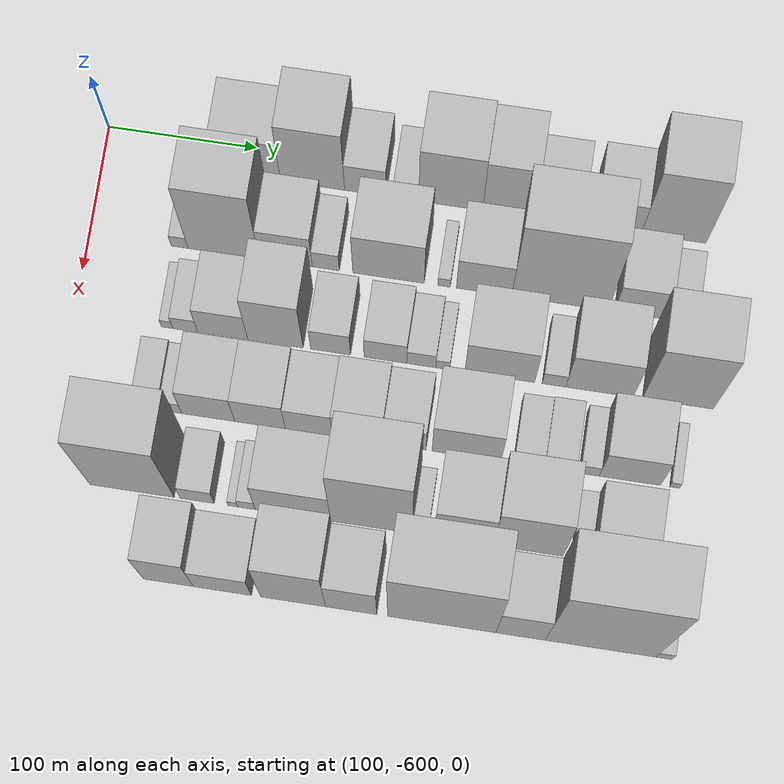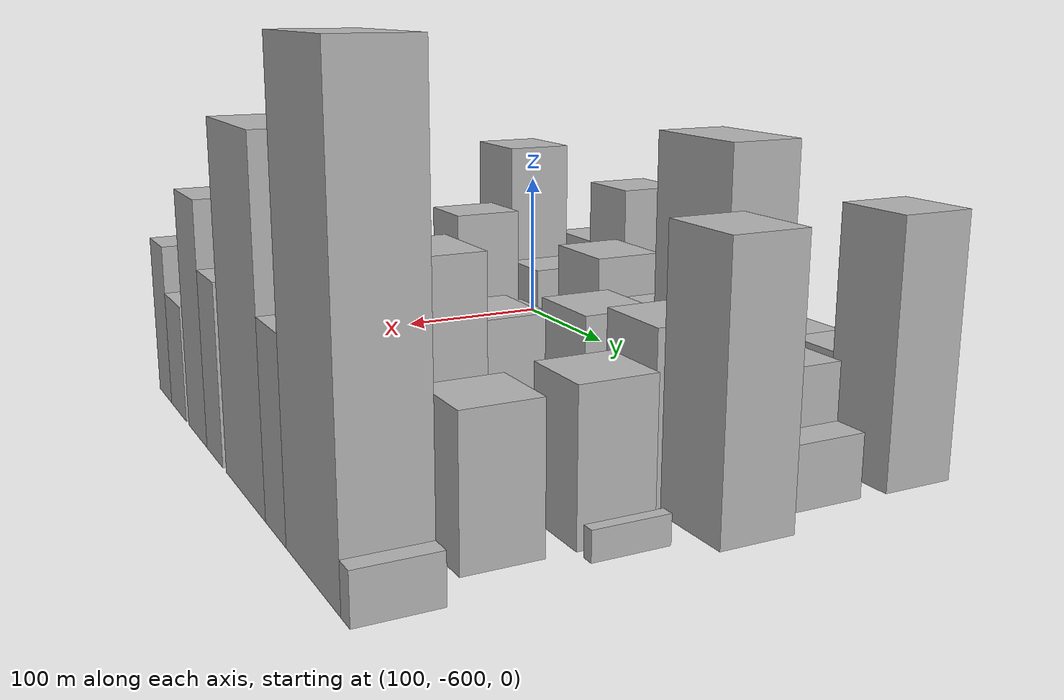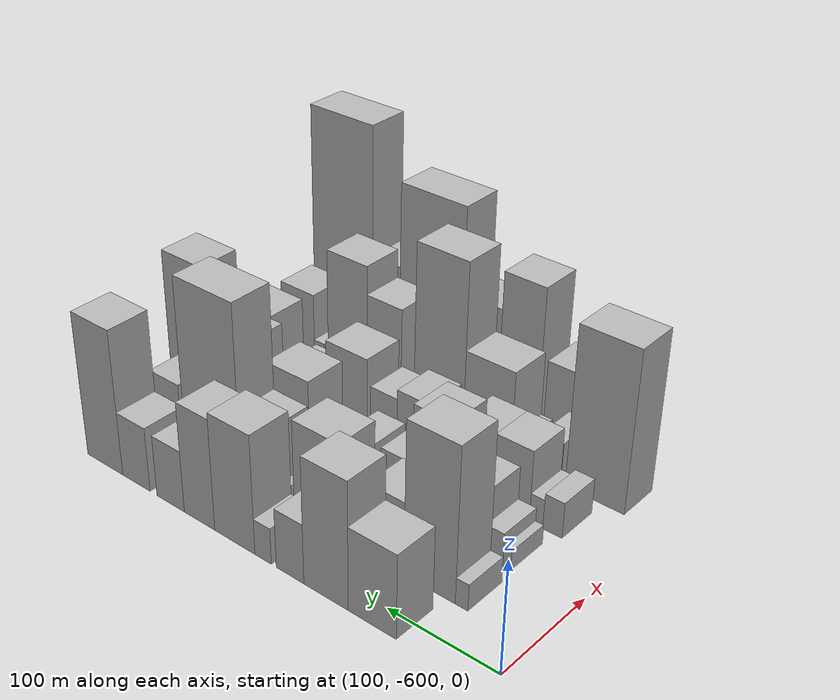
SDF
<sdf version="1.6">
 <world name="default">
  <model name="building_11">
   <static>1</static>
   <pose>100.0000 -503.0766 0 0.000000 0.000000 0.000000</pose>
   <link name="link">
    <pose>0 0 37.50 0 0 0</pose>
    <collision name="collision"><geometry><box><size>40.0000 44.2611 75.0000</size></box></geometry></collision>
    <visual name="visual">
     <cast_shadows>0</cast_shadows>
     <geometry><box><size>40.0000 44.2611 75.0000</size></box></geometry>
     <material>
      <script>
       <uri>model://HANNAS_wall/materials/scripts</uri>
       <uri>model://HANNAS_wall/materials/textures</uri>
       <name>vrc/HANNAS_wall</name>
      </script>
     </material>
    </visual>
   </link>
  </model>
  <model name="building_12">
   <static>1</static>
   <pose>100.0000 -459.4445 0 0.000000 0.000000 0.000000</pose>
   <link name="link">
    <pose>0 0 57.00 0 0 0</pose>
    <collision name="collision"><geometry><box><size>40.0000 43.0030 114.0000</size></box></geometry></collision>
    <visual name="visual">
     <cast_shadows>0</cast_shadows>
     <geometry><box><size>40.0000 43.0030 114.0000</size></box></geometry>
     <material>
      <script>
       <uri>model://HANNAS_wall/materials/scripts</uri>
       <uri>model://HANNAS_wall/materials/textures</uri>
       <name>vrc/HANNAS_wall</name>
      </script>
     </material>
    </visual>
   </link>
  </model>
  <model name="building_13">
   <static>1</static>
   <pose>100.0000 -424.0741 0 0.000000 0.000000 0.000000</pose>
   <link name="link">
    <pose>0 0 27.00 0 0 0</pose>
    <collision name="collision"><geometry><box><size>40.0000 27.7378 54.0000</size></box></geometry></collision>
    <visual name="visual">
     <cast_shadows>0</cast_shadows>
     <geometry><box><size>40.0000 27.7378 54.0000</size></box></geometry>
     <material>
      <script>
       <uri>model://HANNAS_wall/materials/scripts</uri>
       <uri>model://HANNAS_wall/materials/textures</uri>
       <name>vrc/HANNAS_wall</name>
      </script>
     </material>
    </visual>
   </link>
  </model>
  <model name="building_14">
   <static>1</static>
   <pose>100.0000 -396.7473 0 0.000000 0.000000 0.000000</pose>
   <link name="link">
    <pose>0 0 16.50 0 0 0</pose>
    <collision name="collision"><geometry><box><size>40.0000 16.9158 33.0000</size></box></geometry></collision>
    <visual name="visual">
     <cast_shadows>0</cast_shadows>
     <geometry><box><size>40.0000 16.9158 33.0000</size></box></geometry>
     <material>
      <script>
       <uri>model://HANNAS_wall/materials/scripts</uri>
       <uri>model://HANNAS_wall/materials/textures</uri>
       <name>vrc/HANNAS_wall</name>
      </script>
     </material>
    </visual>
   </link>
  </model>
  <model name="building_15">
   <static>1</static>
   <pose>100.0000 -366.8694 0 0.000000 0.000000 0.000000</pose>
   <link name="link">
    <pose>0 0 54.00 0 0 0</pose>
    <collision name="collision"><geometry><box><size>40.0000 42.8400 108.0000</size></box></geometry></collision>
    <visual name="visual">
     <cast_shadows>0</cast_shadows>
     <geometry><box><size>40.0000 42.8400 108.0000</size></box></geometry>
     <material>
      <script>
       <uri>model://HANNAS_wall/materials/scripts</uri>
       <uri>model://HANNAS_wall/materials/textures</uri>
       <name>vrc/HANNAS_wall</name>
      </script>
     </material>
    </visual>
   </link>
  </model>
  <model name="building_16">
   <static>1</static>
   <pose>100.0000 -328.5726 0 0.000000 0.000000 0.000000</pose>
   <link name="link">
    <pose>0 0 51.00 0 0 0</pose>
    <collision name="collision"><geometry><box><size>40.0000 33.7535 102.0000</size></box></geometry></collision>
    <visual name="visual">
     <cast_shadows>0</cast_shadows>
     <geometry><box><size>40.0000 33.7535 102.0000</size></box></geometry>
     <material>
      <script>
       <uri>model://HANNAS_wall/materials/scripts</uri>
       <uri>model://HANNAS_wall/materials/textures</uri>
       <name>vrc/HANNAS_wall</name>
      </script>
     </material>
    </visual>
   </link>
  </model>
  <model name="building_17">
   <static>1</static>
   <pose>100.0000 -295.9605 0 0.000000 0.000000 0.000000</pose>
   <link name="link">
    <pose>0 0 28.50 0 0 0</pose>
    <collision name="collision"><geometry><box><size>40.0000 31.4708 57.0000</size></box></geometry></collision>
    <visual name="visual">
     <cast_shadows>0</cast_shadows>
     <geometry><box><size>40.0000 31.4708 57.0000</size></box></geometry>
     <material>
      <script>
       <uri>model://HANNAS_wall/materials/scripts</uri>
       <uri>model://HANNAS_wall/materials/textures</uri>
       <name>vrc/HANNAS_wall</name>
      </script>
     </material>
    </visual>
   </link>
  </model>
  <model name="building_18">
   <static>1</static>
   <pose>100.0000 -255.9308 0 0.000000 0.000000 0.000000</pose>
   <link name="link">
    <pose>0 0 30.00 0 0 0</pose>
    <collision name="collision"><geometry><box><size>40.0000 32.5886 60.0000</size></box></geometry></collision>
    <visual name="visual">
     <cast_shadows>0</cast_shadows>
     <geometry><box><size>40.0000 32.5886 60.0000</size></box></geometry>
     <material>
      <script>
       <uri>model://HANNAS_wall/materials/scripts</uri>
       <uri>model://HANNAS_wall/materials/textures</uri>
       <name>vrc/HANNAS_wall</name>
      </script>
     </material>
    </visual>
   </link>
  </model>
  <model name="building_19">
   <static>1</static>
   <pose>100.0000 -218.0816 0 0.000000 0.000000 0.000000</pose>
   <link name="link">
    <pose>0 0 67.50 0 0 0</pose>
    <collision name="collision"><geometry><box><size>40.0000 43.1098 135.0000</size></box></geometry></collision>
    <visual name="visual">
     <cast_shadows>0</cast_shadows>
     <geometry><box><size>40.0000 43.1098 135.0000</size></box></geometry>
     <material>
      <script>
       <uri>model://HANNAS_wall/materials/scripts</uri>
       <uri>model://HANNAS_wall/materials/textures</uri>
       <name>vrc/HANNAS_wall</name>
      </script>
     </material>
    </visual>
   </link>
  </model>
  <model name="building_62">
   <static>1</static>
   <pose>155.0000 -539.3134 0 0.000000 0.000000 0.000000</pose>
   <link name="link">
    <pose>0 0 12.00 0 0 0</pose>
    <collision name="collision"><geometry><box><size>40.0000 11.3011 24.0000</size></box></geometry></collision>
    <visual name="visual">
     <cast_shadows>0</cast_shadows>
     <geometry><box><size>40.0000 11.3011 24.0000</size></box></geometry>
     <material>
      <script>
       <uri>model://HANNAS_wall/materials/scripts</uri>
       <uri>model://HANNAS_wall/materials/textures</uri>
       <name>vrc/HANNAS_wall</name>
      </script>
     </material>
    </visual>
   </link>
  </model>
  <model name="building_63">
   <static>1</static>
   <pose>155.0000 -509.8945 0 0.000000 0.000000 0.000000</pose>
   <link name="link">
    <pose>0 0 69.00 0 0 0</pose>
    <collision name="collision"><geometry><box><size>40.0000 47.5366 138.0000</size></box></geometry></collision>
    <visual name="visual">
     <cast_shadows>0</cast_shadows>
     <geometry><box><size>40.0000 47.5366 138.0000</size></box></geometry>
     <material>
      <script>
       <uri>model://HANNAS_wall/materials/scripts</uri>
       <uri>model://HANNAS_wall/materials/textures</uri>
       <name>vrc/HANNAS_wall</name>
      </script>
     </material>
    </visual>
   </link>
  </model>
  <model name="building_64">
   <static>1</static>
   <pose>155.0000 -468.4317 0 0.000000 0.000000 0.000000</pose>
   <link name="link">
    <pose>0 0 33.00 0 0 0</pose>
    <collision name="collision"><geometry><box><size>40.0000 35.3890 66.0000</size></box></geometry></collision>
    <visual name="visual">
     <cast_shadows>0</cast_shadows>
     <geometry><box><size>40.0000 35.3890 66.0000</size></box></geometry>
     <material>
      <script>
       <uri>model://HANNAS_wall/materials/scripts</uri>
       <uri>model://HANNAS_wall/materials/textures</uri>
       <name>vrc/HANNAS_wall</name>
      </script>
     </material>
    </visual>
   </link>
  </model>
  <model name="building_65">
   <static>1</static>
   <pose>155.0000 -441.7336 0 0.000000 0.000000 0.000000</pose>
   <link name="link">
    <pose>0 0 18.00 0 0 0</pose>
    <collision name="collision"><geometry><box><size>40.0000 18.0073 36.0000</size></box></geometry></collision>
    <visual name="visual">
     <cast_shadows>0</cast_shadows>
     <geometry><box><size>40.0000 18.0073 36.0000</size></box></geometry>
     <material>
      <script>
       <uri>model://HANNAS_wall/materials/scripts</uri>
       <uri>model://HANNAS_wall/materials/textures</uri>
       <name>vrc/HANNAS_wall</name>
      </script>
     </material>
    </visual>
   </link>
  </model>
  <model name="building_66">
   <static>1</static>
   <pose>155.0000 -400.0193 0 0.000000 0.000000 0.000000</pose>
   <link name="link">
    <pose>0 0 43.50 0 0 0</pose>
    <collision name="collision"><geometry><box><size>40.0000 47.4213 87.0000</size></box></geometry></collision>
    <visual name="visual">
     <cast_shadows>0</cast_shadows>
     <geometry><box><size>40.0000 47.4213 87.0000</size></box></geometry>
     <material>
      <script>
       <uri>model://HANNAS_wall/materials/scripts</uri>
       <uri>model://HANNAS_wall/materials/textures</uri>
       <name>vrc/HANNAS_wall</name>
      </script>
     </material>
    </visual>
   </link>
  </model>
  <model name="building_67">
   <static>1</static>
   <pose>155.0000 -363.1288 0 0.000000 0.000000 0.000000</pose>
   <link name="link">
    <pose>0 0 9.00 0 0 0</pose>
    <collision name="collision"><geometry><box><size>40.0000 8.3597 18.0000</size></box></geometry></collision>
    <visual name="visual">
     <cast_shadows>0</cast_shadows>
     <geometry><box><size>40.0000 8.3597 18.0000</size></box></geometry>
     <material>
      <script>
       <uri>model://HANNAS_wall/materials/scripts</uri>
       <uri>model://HANNAS_wall/materials/textures</uri>
       <name>vrc/HANNAS_wall</name>
      </script>
     </material>
    </visual>
   </link>
  </model>
  <model name="building_68">
   <static>1</static>
   <pose>155.0000 -336.6255 0 0.000000 0.000000 0.000000</pose>
   <link name="link">
    <pose>0 0 34.50 0 0 0</pose>
    <collision name="collision"><geometry><box><size>40.0000 36.6469 69.0000</size></box></geometry></collision>
    <visual name="visual">
     <cast_shadows>0</cast_shadows>
     <geometry><box><size>40.0000 36.6469 69.0000</size></box></geometry>
     <material>
      <script>
       <uri>model://HANNAS_wall/materials/scripts</uri>
       <uri>model://HANNAS_wall/materials/textures</uri>
       <name>vrc/HANNAS_wall</name>
      </script>
     </material>
    </visual>
   </link>
  </model>
  <model name="building_69">
   <static>1</static>
   <pose>155.0000 -286.3403 0 0.000000 0.000000 0.000000</pose>
   <link name="link">
    <pose>0 0 82.50 0 0 0</pose>
    <collision name="collision"><geometry><box><size>40.0000 63.9236 165.0000</size></box></geometry></collision>
    <visual name="visual">
     <cast_shadows>0</cast_shadows>
     <geometry><box><size>40.0000 63.9236 165.0000</size></box></geometry>
     <material>
      <script>
       <uri>model://HANNAS_wall/materials/scripts</uri>
       <uri>model://HANNAS_wall/materials/textures</uri>
       <name>vrc/HANNAS_wall</name>
      </script>
     </material>
    </visual>
   </link>
  </model>
  <model name="building_70">
   <static>1</static>
   <pose>155.0000 -233.5866 0 0.000000 0.000000 0.000000</pose>
   <link name="link">
    <pose>0 0 31.50 0 0 0</pose>
    <collision name="collision"><geometry><box><size>40.0000 33.5837 63.0000</size></box></geometry></collision>
    <visual name="visual">
     <cast_shadows>0</cast_shadows>
     <geometry><box><size>40.0000 33.5837 63.0000</size></box></geometry>
     <material>
      <script>
       <uri>model://HANNAS_wall/materials/scripts</uri>
       <uri>model://HANNAS_wall/materials/textures</uri>
       <name>vrc/HANNAS_wall</name>
      </script>
     </material>
    </visual>
   </link>
  </model>
  <model name="building_71">
   <static>1</static>
   <pose>155.0000 -207.1999 0 0.000000 0.000000 0.000000</pose>
   <link name="link">
    <pose>0 0 16.50 0 0 0</pose>
    <collision name="collision"><geometry><box><size>40.0000 19.1897 33.0000</size></box></geometry></collision>
    <visual name="visual">
     <cast_shadows>0</cast_shadows>
     <geometry><box><size>40.0000 19.1897 33.0000</size></box></geometry>
     <material>
      <script>
       <uri>model://HANNAS_wall/materials/scripts</uri>
       <uri>model://HANNAS_wall/materials/textures</uri>
       <name>vrc/HANNAS_wall</name>
      </script>
     </material>
    </visual>
   </link>
  </model>
  <model name="building_112">
   <static>1</static>
   <pose>210.0000 -538.1920 0 0.000000 0.000000 0.000000</pose>
   <link name="link">
    <pose>0 0 9.00 0 0 0</pose>
    <collision name="collision"><geometry><box><size>40.0000 7.4418 18.0000</size></box></geometry></collision>
    <visual name="visual">
     <cast_shadows>0</cast_shadows>
     <geometry><box><size>40.0000 7.4418 18.0000</size></box></geometry>
     <material>
      <script>
       <uri>model://HANNAS_wall/materials/scripts</uri>
       <uri>model://HANNAS_wall/materials/textures</uri>
       <name>vrc/HANNAS_wall</name>
      </script>
     </material>
    </visual>
   </link>
  </model>
  <model name="building_113">
   <static>1</static>
   <pose>210.0000 -526.1762 0 0.000000 0.000000 0.000000</pose>
   <link name="link">
    <pose>0 0 15.00 0 0 0</pose>
    <collision name="collision"><geometry><box><size>40.0000 16.5898 30.0000</size></box></geometry></collision>
    <visual name="visual">
     <cast_shadows>0</cast_shadows>
     <geometry><box><size>40.0000 16.5898 30.0000</size></box></geometry>
     <material>
      <script>
       <uri>model://HANNAS_wall/materials/scripts</uri>
       <uri>model://HANNAS_wall/materials/textures</uri>
       <name>vrc/HANNAS_wall</name>
      </script>
     </material>
    </visual>
   </link>
  </model>
  <model name="building_114">
   <static>1</static>
   <pose>210.0000 -501.2615 0 0.000000 0.000000 0.000000</pose>
   <link name="link">
    <pose>0 0 30.00 0 0 0</pose>
    <collision name="collision"><geometry><box><size>40.0000 33.2396 60.0000</size></box></geometry></collision>
    <visual name="visual">
     <cast_shadows>0</cast_shadows>
     <geometry><box><size>40.0000 33.2396 60.0000</size></box></geometry>
     <material>
      <script>
       <uri>model://HANNAS_wall/materials/scripts</uri>
       <uri>model://HANNAS_wall/materials/textures</uri>
       <name>vrc/HANNAS_wall</name>
      </script>
     </material>
    </visual>
   </link>
  </model>
  <model name="building_115">
   <static>1</static>
   <pose>210.0000 -466.2937 0 0.000000 0.000000 0.000000</pose>
   <link name="link">
    <pose>0 0 52.50 0 0 0</pose>
    <collision name="collision"><geometry><box><size>40.0000 36.6959 105.0000</size></box></geometry></collision>
    <visual name="visual">
     <cast_shadows>0</cast_shadows>
     <geometry><box><size>40.0000 36.6959 105.0000</size></box></geometry>
     <material>
      <script>
       <uri>model://HANNAS_wall/materials/scripts</uri>
       <uri>model://HANNAS_wall/materials/textures</uri>
       <name>vrc/HANNAS_wall</name>
      </script>
     </material>
    </visual>
   </link>
  </model>
  <model name="building_116">
   <static>1</static>
   <pose>210.0000 -429.7981 0 0.000000 0.000000 0.000000</pose>
   <link name="link">
    <pose>0 0 25.50 0 0 0</pose>
    <collision name="collision"><geometry><box><size>40.0000 26.2952 51.0000</size></box></geometry></collision>
    <visual name="visual">
     <cast_shadows>0</cast_shadows>
     <geometry><box><size>40.0000 26.2952 51.0000</size></box></geometry>
     <material>
      <script>
       <uri>model://HANNAS_wall/materials/scripts</uri>
       <uri>model://HANNAS_wall/materials/textures</uri>
       <name>vrc/HANNAS_wall</name>
      </script>
     </material>
    </visual>
   </link>
  </model>
  <model name="building_117">
   <static>1</static>
   <pose>210.0000 -393.5636 0 0.000000 0.000000 0.000000</pose>
   <link name="link">
    <pose>0 0 24.00 0 0 0</pose>
    <collision name="collision"><geometry><box><size>40.0000 28.1739 48.0000</size></box></geometry></collision>
    <visual name="visual">
     <cast_shadows>0</cast_shadows>
     <geometry><box><size>40.0000 28.1739 48.0000</size></box></geometry>
     <material>
      <script>
       <uri>model://HANNAS_wall/materials/scripts</uri>
       <uri>model://HANNAS_wall/materials/textures</uri>
       <name>vrc/HANNAS_wall</name>
      </script>
     </material>
    </visual>
   </link>
  </model>
  <model name="building_118">
   <static>1</static>
   <pose>210.0000 -369.9596 0 0.000000 0.000000 0.000000</pose>
   <link name="link">
    <pose>0 0 16.50 0 0 0</pose>
    <collision name="collision"><geometry><box><size>40.0000 19.0341 33.0000</size></box></geometry></collision>
    <visual name="visual">
     <cast_shadows>0</cast_shadows>
     <geometry><box><size>40.0000 19.0341 33.0000</size></box></geometry>
     <material>
      <script>
       <uri>model://HANNAS_wall/materials/scripts</uri>
       <uri>model://HANNAS_wall/materials/textures</uri>
       <name>vrc/HANNAS_wall</name>
      </script>
     </material>
    </visual>
   </link>
  </model>
  <model name="building_119">
   <static>1</static>
   <pose>210.0000 -355.8477 0 0.000000 0.000000 0.000000</pose>
   <link name="link">
    <pose>0 0 10.50 0 0 0</pose>
    <collision name="collision"><geometry><box><size>40.0000 9.1898 21.0000</size></box></geometry></collision>
    <visual name="visual">
     <cast_shadows>0</cast_shadows>
     <geometry><box><size>40.0000 9.1898 21.0000</size></box></geometry>
     <material>
      <script>
       <uri>model://HANNAS_wall/materials/scripts</uri>
       <uri>model://HANNAS_wall/materials/textures</uri>
       <name>vrc/HANNAS_wall</name>
      </script>
     </material>
    </visual>
   </link>
  </model>
  <model name="building_120">
   <static>1</static>
   <pose>210.0000 -318.3385 0 0.000000 0.000000 0.000000</pose>
   <link name="link">
    <pose>0 0 39.00 0 0 0</pose>
    <collision name="collision"><geometry><box><size>40.0000 45.8285 78.0000</size></box></geometry></collision>
    <visual name="visual">
     <cast_shadows>0</cast_shadows>
     <geometry><box><size>40.0000 45.8285 78.0000</size></box></geometry>
     <material>
      <script>
       <uri>model://HANNAS_wall/materials/scripts</uri>
       <uri>model://HANNAS_wall/materials/textures</uri>
       <name>vrc/HANNAS_wall</name>
      </script>
     </material>
    </visual>
   </link>
  </model>
  <model name="building_121">
   <static>1</static>
   <pose>210.0000 -282.6777 0 0.000000 0.000000 0.000000</pose>
   <link name="link">
    <pose>0 0 15.00 0 0 0</pose>
    <collision name="collision"><geometry><box><size>40.0000 15.4931 30.0000</size></box></geometry></collision>
    <visual name="visual">
     <cast_shadows>0</cast_shadows>
     <geometry><box><size>40.0000 15.4931 30.0000</size></box></geometry>
     <material>
      <script>
       <uri>model://HANNAS_wall/materials/scripts</uri>
       <uri>model://HANNAS_wall/materials/textures</uri>
       <name>vrc/HANNAS_wall</name>
      </script>
     </material>
    </visual>
   </link>
  </model>
  <model name="building_122">
   <static>1</static>
   <pose>210.0000 -252.7951 0 0.000000 0.000000 0.000000</pose>
   <link name="link">
    <pose>0 0 43.50 0 0 0</pose>
    <collision name="collision"><geometry><box><size>40.0000 44.2721 87.0000</size></box></geometry></collision>
    <visual name="visual">
     <cast_shadows>0</cast_shadows>
     <geometry><box><size>40.0000 44.2721 87.0000</size></box></geometry>
     <material>
      <script>
       <uri>model://HANNAS_wall/materials/scripts</uri>
       <uri>model://HANNAS_wall/materials/textures</uri>
       <name>vrc/HANNAS_wall</name>
      </script>
     </material>
    </visual>
   </link>
  </model>
  <model name="building_123">
   <static>1</static>
   <pose>210.0000 -201.3968 0 0.000000 0.000000 0.000000</pose>
   <link name="link">
    <pose>0 0 69.00 0 0 0</pose>
    <collision name="collision"><geometry><box><size>40.0000 46.5245 138.0000</size></box></geometry></collision>
    <visual name="visual">
     <cast_shadows>0</cast_shadows>
     <geometry><box><size>40.0000 46.5245 138.0000</size></box></geometry>
     <material>
      <script>
       <uri>model://HANNAS_wall/materials/scripts</uri>
       <uri>model://HANNAS_wall/materials/textures</uri>
       <name>vrc/HANNAS_wall</name>
      </script>
     </material>
    </visual>
   </link>
  </model>
  <model name="building_167">
   <static>1</static>
   <pose>265.0000 -540.4863 0 0.000000 0.000000 0.000000</pose>
   <link name="link">
    <pose>0 0 16.50 0 0 0</pose>
    <collision name="collision"><geometry><box><size>40.0000 17.7133 33.0000</size></box></geometry></collision>
    <visual name="visual">
     <cast_shadows>0</cast_shadows>
     <geometry><box><size>40.0000 17.7133 33.0000</size></box></geometry>
     <material>
      <script>
       <uri>model://HANNAS_wall/materials/scripts</uri>
       <uri>model://HANNAS_wall/materials/textures</uri>
       <name>vrc/HANNAS_wall</name>
      </script>
     </material>
    </visual>
   </link>
  </model>
  <model name="building_168">
   <static>1</static>
   <pose>265.0000 -525.3100 0 0.000000 0.000000 0.000000</pose>
   <link name="link">
    <pose>0 0 13.50 0 0 0</pose>
    <collision name="collision"><geometry><box><size>40.0000 12.6393 27.0000</size></box></geometry></collision>
    <visual name="visual">
     <cast_shadows>0</cast_shadows>
     <geometry><box><size>40.0000 12.6393 27.0000</size></box></geometry>
     <material>
      <script>
       <uri>model://HANNAS_wall/materials/scripts</uri>
       <uri>model://HANNAS_wall/materials/textures</uri>
       <name>vrc/HANNAS_wall</name>
      </script>
     </material>
    </visual>
   </link>
  </model>
  <model name="building_169">
   <static>1</static>
   <pose>265.0000 -501.5116 0 0.000000 0.000000 0.000000</pose>
   <link name="link">
    <pose>0 0 33.00 0 0 0</pose>
    <collision name="collision"><geometry><box><size>40.0000 34.9575 66.0000</size></box></geometry></collision>
    <visual name="visual">
     <cast_shadows>0</cast_shadows>
     <geometry><box><size>40.0000 34.9575 66.0000</size></box></geometry>
     <material>
      <script>
       <uri>model://HANNAS_wall/materials/scripts</uri>
       <uri>model://HANNAS_wall/materials/textures</uri>
       <name>vrc/HANNAS_wall</name>
      </script>
     </material>
    </visual>
   </link>
  </model>
  <model name="building_170">
   <static>1</static>
   <pose>265.0000 -467.3672 0 0.000000 0.000000 0.000000</pose>
   <link name="link">
    <pose>0 0 33.00 0 0 0</pose>
    <collision name="collision"><geometry><box><size>40.0000 33.3312 66.0000</size></box></geometry></collision>
    <visual name="visual">
     <cast_shadows>0</cast_shadows>
     <geometry><box><size>40.0000 33.3312 66.0000</size></box></geometry>
     <material>
      <script>
       <uri>model://HANNAS_wall/materials/scripts</uri>
       <uri>model://HANNAS_wall/materials/textures</uri>
       <name>vrc/HANNAS_wall</name>
      </script>
     </material>
    </visual>
   </link>
  </model>
  <model name="building_171">
   <static>1</static>
   <pose>265.0000 -435.3234 0 0.000000 0.000000 0.000000</pose>
   <link name="link">
    <pose>0 0 30.00 0 0 0</pose>
    <collision name="collision"><geometry><box><size>40.0000 30.7563 60.0000</size></box></geometry></collision>
    <visual name="visual">
     <cast_shadows>0</cast_shadows>
     <geometry><box><size>40.0000 30.7563 60.0000</size></box></geometry>
     <material>
      <script>
       <uri>model://HANNAS_wall/materials/scripts</uri>
       <uri>model://HANNAS_wall/materials/textures</uri>
       <name>vrc/HANNAS_wall</name>
      </script>
     </material>
    </visual>
   </link>
  </model>
  <model name="building_172">
   <static>1</static>
   <pose>265.0000 -403.3038 0 0.000000 0.000000 0.000000</pose>
   <link name="link">
    <pose>0 0 31.50 0 0 0</pose>
    <collision name="collision"><geometry><box><size>40.0000 33.2829 63.0000</size></box></geometry></collision>
    <visual name="visual">
     <cast_shadows>0</cast_shadows>
     <geometry><box><size>40.0000 33.2829 63.0000</size></box></geometry>
     <material>
      <script>
       <uri>model://HANNAS_wall/materials/scripts</uri>
       <uri>model://HANNAS_wall/materials/textures</uri>
       <name>vrc/HANNAS_wall</name>
      </script>
     </material>
    </visual>
   </link>
  </model>
  <model name="building_173">
   <static>1</static>
   <pose>265.0000 -372.6515 0 0.000000 0.000000 0.000000</pose>
   <link name="link">
    <pose>0 0 27.00 0 0 0</pose>
    <collision name="collision"><geometry><box><size>40.0000 28.0217 54.0000</size></box></geometry></collision>
    <visual name="visual">
     <cast_shadows>0</cast_shadows>
     <geometry><box><size>40.0000 28.0217 54.0000</size></box></geometry>
     <material>
      <script>
       <uri>model://HANNAS_wall/materials/scripts</uri>
       <uri>model://HANNAS_wall/materials/textures</uri>
       <name>vrc/HANNAS_wall</name>
      </script>
     </material>
    </visual>
   </link>
  </model>
  <model name="building_174">
   <static>1</static>
   <pose>265.0000 -332.1356 0 0.000000 0.000000 0.000000</pose>
   <link name="link">
    <pose>0 0 39.00 0 0 0</pose>
    <collision name="collision"><geometry><box><size>40.0000 45.0102 78.0000</size></box></geometry></collision>
    <visual name="visual">
     <cast_shadows>0</cast_shadows>
     <geometry><box><size>40.0000 45.0102 78.0000</size></box></geometry>
     <material>
      <script>
       <uri>model://HANNAS_wall/materials/scripts</uri>
       <uri>model://HANNAS_wall/materials/textures</uri>
       <name>vrc/HANNAS_wall</name>
      </script>
     </material>
    </visual>
   </link>
  </model>
  <model name="building_175">
   <static>1</static>
   <pose>265.0000 -291.8471 0 0.000000 0.000000 0.000000</pose>
   <link name="link">
    <pose>0 0 16.50 0 0 0</pose>
    <collision name="collision"><geometry><box><size>40.0000 19.5667 33.0000</size></box></geometry></collision>
    <visual name="visual">
     <cast_shadows>0</cast_shadows>
     <geometry><box><size>40.0000 19.5667 33.0000</size></box></geometry>
     <material>
      <script>
       <uri>model://HANNAS_wall/materials/scripts</uri>
       <uri>model://HANNAS_wall/materials/textures</uri>
       <name>vrc/HANNAS_wall</name>
      </script>
     </material>
    </visual>
   </link>
  </model>
  <model name="building_176">
   <static>1</static>
   <pose>265.0000 -271.9509 0 0.000000 0.000000 0.000000</pose>
   <link name="link">
    <pose>0 0 18.00 0 0 0</pose>
    <collision name="collision"><geometry><box><size>40.0000 20.2257 36.0000</size></box></geometry></collision>
    <visual name="visual">
     <cast_shadows>0</cast_shadows>
     <geometry><box><size>40.0000 20.2257 36.0000</size></box></geometry>
     <material>
      <script>
       <uri>model://HANNAS_wall/materials/scripts</uri>
       <uri>model://HANNAS_wall/materials/textures</uri>
       <name>vrc/HANNAS_wall</name>
      </script>
     </material>
    </visual>
   </link>
  </model>
  <model name="building_177">
   <static>1</static>
   <pose>265.0000 -252.2856 0 0.000000 0.000000 0.000000</pose>
   <link name="link">
    <pose>0 0 13.50 0 0 0</pose>
    <collision name="collision"><geometry><box><size>40.0000 13.1049 27.0000</size></box></geometry></collision>
    <visual name="visual">
     <cast_shadows>0</cast_shadows>
     <geometry><box><size>40.0000 13.1049 27.0000</size></box></geometry>
     <material>
      <script>
       <uri>model://HANNAS_wall/materials/scripts</uri>
       <uri>model://HANNAS_wall/materials/textures</uri>
       <name>vrc/HANNAS_wall</name>
      </script>
     </material>
    </visual>
   </link>
  </model>
  <model name="building_178">
   <static>1</static>
   <pose>265.0000 -225.7400 0 0.000000 0.000000 0.000000</pose>
   <link name="link">
    <pose>0 0 37.50 0 0 0</pose>
    <collision name="collision"><geometry><box><size>40.0000 39.9862 75.0000</size></box></geometry></collision>
    <visual name="visual">
     <cast_shadows>0</cast_shadows>
     <geometry><box><size>40.0000 39.9862 75.0000</size></box></geometry>
     <material>
      <script>
       <uri>model://HANNAS_wall/materials/scripts</uri>
       <uri>model://HANNAS_wall/materials/textures</uri>
       <name>vrc/HANNAS_wall</name>
      </script>
     </material>
    </visual>
   </link>
  </model>
  <model name="building_179">
   <static>1</static>
   <pose>265.0000 -196.4585 0 0.000000 0.000000 0.000000</pose>
   <link name="link">
    <pose>0 0 7.50 0 0 0</pose>
    <collision name="collision"><geometry><box><size>40.0000 6.5767 15.0000</size></box></geometry></collision>
    <visual name="visual">
     <cast_shadows>0</cast_shadows>
     <geometry><box><size>40.0000 6.5767 15.0000</size></box></geometry>
     <material>
      <script>
       <uri>model://HANNAS_wall/materials/scripts</uri>
       <uri>model://HANNAS_wall/materials/textures</uri>
       <name>vrc/HANNAS_wall</name>
      </script>
     </material>
    </visual>
   </link>
  </model>
  <model name="building_218">
   <static>1</static>
   <pose>320.0000 -541.8218 0 0.000000 0.000000 0.000000</pose>
   <link name="link">
    <pose>0 0 75.00 0 0 0</pose>
    <collision name="collision"><geometry><box><size>40.0000 54.9738 150.0000</size></box></geometry></collision>
    <visual name="visual">
     <cast_shadows>0</cast_shadows>
     <geometry><box><size>40.0000 54.9738 150.0000</size></box></geometry>
     <material>
      <script>
       <uri>model://HANNAS_wall/materials/scripts</uri>
       <uri>model://HANNAS_wall/materials/textures</uri>
       <name>vrc/HANNAS_wall</name>
      </script>
     </material>
    </visual>
   </link>
  </model>
  <model name="building_219">
   <static>1</static>
   <pose>320.0000 -499.2632 0 0.000000 0.000000 0.000000</pose>
   <link name="link">
    <pose>0 0 19.50 0 0 0</pose>
    <collision name="collision"><geometry><box><size>40.0000 22.1435 39.0000</size></box></geometry></collision>
    <visual name="visual">
     <cast_shadows>0</cast_shadows>
     <geometry><box><size>40.0000 22.1435 39.0000</size></box></geometry>
     <material>
      <script>
       <uri>model://HANNAS_wall/materials/scripts</uri>
       <uri>model://HANNAS_wall/materials/textures</uri>
       <name>vrc/HANNAS_wall</name>
      </script>
     </material>
    </visual>
   </link>
  </model>
  <model name="building_220">
   <static>1</static>
   <pose>320.0000 -476.0483 0 0.000000 0.000000 0.000000</pose>
   <link name="link">
    <pose>0 0 7.50 0 0 0</pose>
    <collision name="collision"><geometry><box><size>40.0000 6.2862 15.0000</size></box></geometry></collision>
    <visual name="visual">
     <cast_shadows>0</cast_shadows>
     <geometry><box><size>40.0000 6.2862 15.0000</size></box></geometry>
     <material>
      <script>
       <uri>model://HANNAS_wall/materials/scripts</uri>
       <uri>model://HANNAS_wall/materials/textures</uri>
       <name>vrc/HANNAS_wall</name>
      </script>
     </material>
    </visual>
   </link>
  </model>
  <model name="building_221">
   <static>1</static>
   <pose>320.0000 -467.1333 0 0.000000 0.000000 0.000000</pose>
   <link name="link">
    <pose>0 0 12.00 0 0 0</pose>
    <collision name="collision"><geometry><box><size>40.0000 11.5437 24.0000</size></box></geometry></collision>
    <visual name="visual">
     <cast_shadows>0</cast_shadows>
     <geometry><box><size>40.0000 11.5437 24.0000</size></box></geometry>
     <material>
      <script>
       <uri>model://HANNAS_wall/materials/scripts</uri>
       <uri>model://HANNAS_wall/materials/textures</uri>
       <name>vrc/HANNAS_wall</name>
      </script>
     </material>
    </visual>
   </link>
  </model>
  <model name="building_222">
   <static>1</static>
   <pose>320.0000 -436.7764 0 0.000000 0.000000 0.000000</pose>
   <link name="link">
    <pose>0 0 42.00 0 0 0</pose>
    <collision name="collision"><geometry><box><size>40.0000 49.1701 84.0000</size></box></geometry></collision>
    <visual name="visual">
     <cast_shadows>0</cast_shadows>
     <geometry><box><size>40.0000 49.1701 84.0000</size></box></geometry>
     <material>
      <script>
       <uri>model://HANNAS_wall/materials/scripts</uri>
       <uri>model://HANNAS_wall/materials/textures</uri>
       <name>vrc/HANNAS_wall</name>
      </script>
     </material>
    </visual>
   </link>
  </model>
  <model name="building_223">
   <static>1</static>
   <pose>320.0000 -385.7879 0 0.000000 0.000000 0.000000</pose>
   <link name="link">
    <pose>0 0 82.50 0 0 0</pose>
    <collision name="collision"><geometry><box><size>40.0000 52.8069 165.0000</size></box></geometry></collision>
    <visual name="visual">
     <cast_shadows>0</cast_shadows>
     <geometry><box><size>40.0000 52.8069 165.0000</size></box></geometry>
     <material>
      <script>
       <uri>model://HANNAS_wall/materials/scripts</uri>
       <uri>model://HANNAS_wall/materials/textures</uri>
       <name>vrc/HANNAS_wall</name>
      </script>
     </material>
    </visual>
   </link>
  </model>
  <model name="building_224">
   <static>1</static>
   <pose>320.0000 -354.2297 0 0.000000 0.000000 0.000000</pose>
   <link name="link">
    <pose>0 0 12.00 0 0 0</pose>
    <collision name="collision"><geometry><box><size>40.0000 10.3094 24.0000</size></box></geometry></collision>
    <visual name="visual">
     <cast_shadows>0</cast_shadows>
     <geometry><box><size>40.0000 10.3094 24.0000</size></box></geometry>
     <material>
      <script>
       <uri>model://HANNAS_wall/materials/scripts</uri>
       <uri>model://HANNAS_wall/materials/textures</uri>
       <name>vrc/HANNAS_wall</name>
      </script>
     </material>
    </visual>
   </link>
  </model>
  <model name="building_225">
   <static>1</static>
   <pose>320.0000 -325.9321 0 0.000000 0.000000 0.000000</pose>
   <link name="link">
    <pose>0 0 48.00 0 0 0</pose>
    <collision name="collision"><geometry><box><size>40.0000 38.2858 96.0000</size></box></geometry></collision>
    <visual name="visual">
     <cast_shadows>0</cast_shadows>
     <geometry><box><size>40.0000 38.2858 96.0000</size></box></geometry>
     <material>
      <script>
       <uri>model://HANNAS_wall/materials/scripts</uri>
       <uri>model://HANNAS_wall/materials/textures</uri>
       <name>vrc/HANNAS_wall</name>
      </script>
     </material>
    </visual>
   </link>
  </model>
  <model name="building_226">
   <static>1</static>
   <pose>320.0000 -284.1989 0 0.000000 0.000000 0.000000</pose>
   <link name="link">
    <pose>0 0 61.50 0 0 0</pose>
    <collision name="collision"><geometry><box><size>40.0000 45.1806 123.0000</size></box></geometry></collision>
    <visual name="visual">
     <cast_shadows>0</cast_shadows>
     <geometry><box><size>40.0000 45.1806 123.0000</size></box></geometry>
     <material>
      <script>
       <uri>model://HANNAS_wall/materials/scripts</uri>
       <uri>model://HANNAS_wall/materials/textures</uri>
       <name>vrc/HANNAS_wall</name>
      </script>
     </material>
    </visual>
   </link>
  </model>
  <model name="building_227">
   <static>1</static>
   <pose>320.0000 -250.7522 0 0.000000 0.000000 0.000000</pose>
   <link name="link">
    <pose>0 0 13.50 0 0 0</pose>
    <collision name="collision"><geometry><box><size>40.0000 11.7130 27.0000</size></box></geometry></collision>
    <visual name="visual">
     <cast_shadows>0</cast_shadows>
     <geometry><box><size>40.0000 11.7130 27.0000</size></box></geometry>
     <material>
      <script>
       <uri>model://HANNAS_wall/materials/scripts</uri>
       <uri>model://HANNAS_wall/materials/textures</uri>
       <name>vrc/HANNAS_wall</name>
      </script>
     </material>
    </visual>
   </link>
  </model>
  <model name="building_228">
   <static>1</static>
   <pose>320.0000 -225.3479 0 0.000000 0.000000 0.000000</pose>
   <link name="link">
    <pose>0 0 36.00 0 0 0</pose>
    <collision name="collision"><geometry><box><size>40.0000 39.0956 72.0000</size></box></geometry></collision>
    <visual name="visual">
     <cast_shadows>0</cast_shadows>
     <geometry><box><size>40.0000 39.0956 72.0000</size></box></geometry>
     <material>
      <script>
       <uri>model://HANNAS_wall/materials/scripts</uri>
       <uri>model://HANNAS_wall/materials/textures</uri>
       <name>vrc/HANNAS_wall</name>
      </script>
     </material>
    </visual>
   </link>
  </model>
  <model name="building_274">
   <static>1</static>
   <pose>375.0000 -508.4785 0 0.000000 0.000000 0.000000</pose>
   <link name="link">
    <pose>0 0 46.50 0 0 0</pose>
    <collision name="collision"><geometry><box><size>40.0000 32.2903 93.0000</size></box></geometry></collision>
    <visual name="visual">
     <cast_shadows>0</cast_shadows>
     <geometry><box><size>40.0000 32.2903 93.0000</size></box></geometry>
     <material>
      <script>
       <uri>model://HANNAS_wall/materials/scripts</uri>
       <uri>model://HANNAS_wall/materials/textures</uri>
       <name>vrc/HANNAS_wall</name>
      </script>
     </material>
    </visual>
   </link>
  </model>
  <model name="building_275">
   <static>1</static>
   <pose>375.0000 -473.5237 0 0.000000 0.000000 0.000000</pose>
   <link name="link">
    <pose>0 0 33.00 0 0 0</pose>
    <collision name="collision"><geometry><box><size>40.0000 37.6191 66.0000</size></box></geometry></collision>
    <visual name="visual">
     <cast_shadows>0</cast_shadows>
     <geometry><box><size>40.0000 37.6191 66.0000</size></box></geometry>
     <material>
      <script>
       <uri>model://HANNAS_wall/materials/scripts</uri>
       <uri>model://HANNAS_wall/materials/textures</uri>
       <name>vrc/HANNAS_wall</name>
      </script>
     </material>
    </visual>
   </link>
  </model>
  <model name="building_276">
   <static>1</static>
   <pose>375.0000 -427.7610 0 0.000000 0.000000 0.000000</pose>
   <link name="link">
    <pose>0 0 66.00 0 0 0</pose>
    <collision name="collision"><geometry><box><size>40.0000 41.9063 132.0000</size></box></geometry></collision>
    <visual name="visual">
     <cast_shadows>0</cast_shadows>
     <geometry><box><size>40.0000 41.9063 132.0000</size></box></geometry>
     <material>
      <script>
       <uri>model://HANNAS_wall/materials/scripts</uri>
       <uri>model://HANNAS_wall/materials/textures</uri>
       <name>vrc/HANNAS_wall</name>
      </script>
     </material>
    </visual>
   </link>
  </model>
  <model name="building_277">
   <static>1</static>
   <pose>375.0000 -390.3099 0 0.000000 0.000000 0.000000</pose>
   <link name="link">
    <pose>0 0 48.00 0 0 0</pose>
    <collision name="collision"><geometry><box><size>40.0000 32.9959 96.0000</size></box></geometry></collision>
    <visual name="visual">
     <cast_shadows>0</cast_shadows>
     <geometry><box><size>40.0000 32.9959 96.0000</size></box></geometry>
     <material>
      <script>
       <uri>model://HANNAS_wall/materials/scripts</uri>
       <uri>model://HANNAS_wall/materials/textures</uri>
       <name>vrc/HANNAS_wall</name>
      </script>
     </material>
    </visual>
   </link>
  </model>
  <model name="building_278">
   <static>1</static>
   <pose>375.0000 -331.9641 0 0.000000 0.000000 0.000000</pose>
   <link name="link">
    <pose>0 0 88.50 0 0 0</pose>
    <collision name="collision"><geometry><box><size>40.0000 69.6958 177.0000</size></box></geometry></collision>
    <visual name="visual">
     <cast_shadows>0</cast_shadows>
     <geometry><box><size>40.0000 69.6958 177.0000</size></box></geometry>
     <material>
      <script>
       <uri>model://HANNAS_wall/materials/scripts</uri>
       <uri>model://HANNAS_wall/materials/textures</uri>
       <name>vrc/HANNAS_wall</name>
      </script>
     </material>
    </visual>
   </link>
  </model>
  <model name="building_279">
   <static>1</static>
   <pose>375.0000 -281.2844 0 0.000000 0.000000 0.000000</pose>
   <link name="link">
    <pose>0 0 48.00 0 0 0</pose>
    <collision name="collision"><geometry><box><size>40.0000 31.6636 96.0000</size></box></geometry></collision>
    <visual name="visual">
     <cast_shadows>0</cast_shadows>
     <geometry><box><size>40.0000 31.6636 96.0000</size></box></geometry>
     <material>
      <script>
       <uri>model://HANNAS_wall/materials/scripts</uri>
       <uri>model://HANNAS_wall/materials/textures</uri>
       <name>vrc/HANNAS_wall</name>
      </script>
     </material>
    </visual>
   </link>
  </model>
  <model name="building_280">
   <static>1</static>
   <pose>375.0000 -229.9824 0 0.000000 0.000000 0.000000</pose>
   <link name="link">
    <pose>0 0 109.50 0 0 0</pose>
    <collision name="collision"><geometry><box><size>40.0000 70.9405 219.0000</size></box></geometry></collision>
    <visual name="visual">
     <cast_shadows>0</cast_shadows>
     <geometry><box><size>40.0000 70.9405 219.0000</size></box></geometry>
     <material>
      <script>
       <uri>model://HANNAS_wall/materials/scripts</uri>
       <uri>model://HANNAS_wall/materials/textures</uri>
       <name>vrc/HANNAS_wall</name>
      </script>
     </material>
    </visual>
   </link>
  </model>
  <model name="building_281">
   <static>1</static>
   <pose>375.0000 -189.3538 0 0.000000 0.000000 0.000000</pose>
   <link name="link">
    <pose>0 0 12.00 0 0 0</pose>
    <collision name="collision"><geometry><box><size>40.0000 10.3166 24.0000</size></box></geometry></collision>
    <visual name="visual">
     <cast_shadows>0</cast_shadows>
     <geometry><box><size>40.0000 10.3166 24.0000</size></box></geometry>
     <material>
      <script>
       <uri>model://HANNAS_wall/materials/scripts</uri>
       <uri>model://HANNAS_wall/materials/textures</uri>
       <name>vrc/HANNAS_wall</name>
      </script>
     </material>
    </visual>
   </link>
  </model>
 </world>
</sdf>
